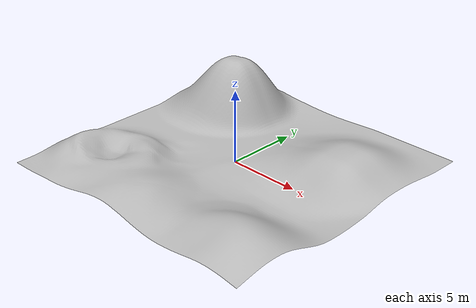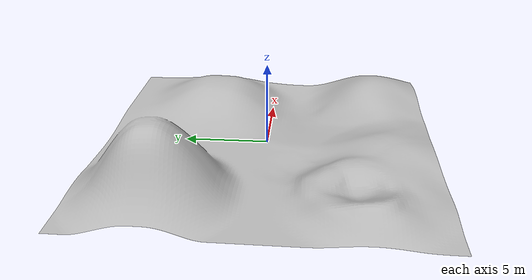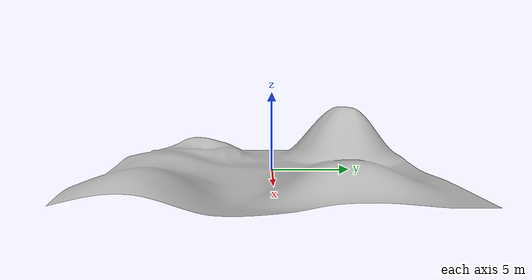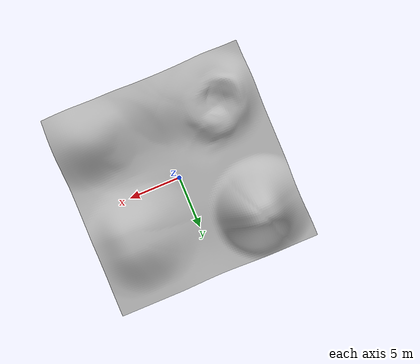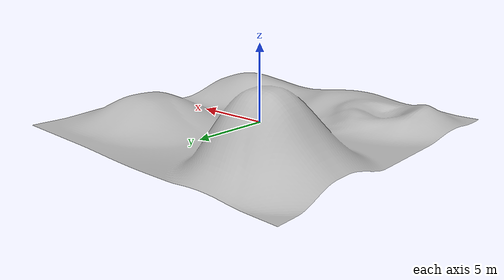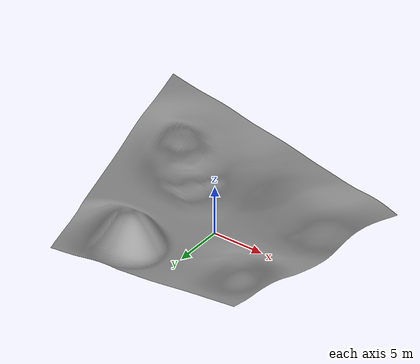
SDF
<?xml version="1.0" ?>
<sdf version="1.5">
  <model name="terrain_model">
    <pose>0 0 0 0 0 0</pose>
    <static>true</static>
    <link name="body">
      <visual name="visual">
        <geometry>
          <mesh><uri>model://turtlebot3_world/meshes/terrain.dae</uri></mesh>
        </geometry>
        <material>
           <script>
             <uri>model://turtlebot3_world/media/scripts</uri>
             <uri>model://turtlebot3_world/media/Textures</uri>
             <name>RepeatedGrass/Diffuse</name>
           </script>
         </material>
      </visual>

      <collision name="collision">
        <geometry>
          <mesh><uri>model://turtlebot3_world/meshes/terrain.dae</uri></mesh>
        </geometry>
      </collision>
    </link>
  </model>
</sdf>
